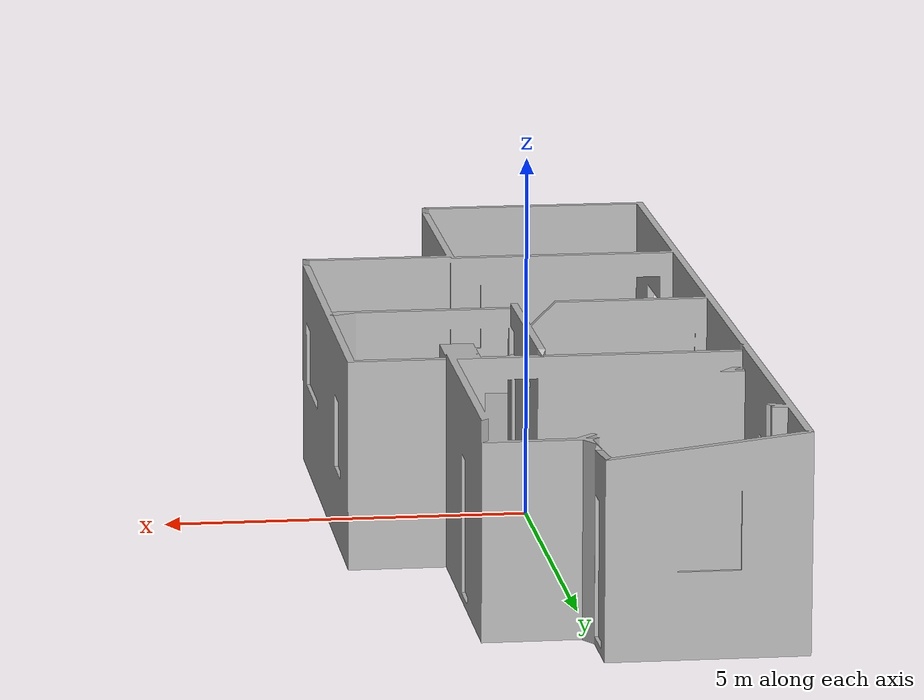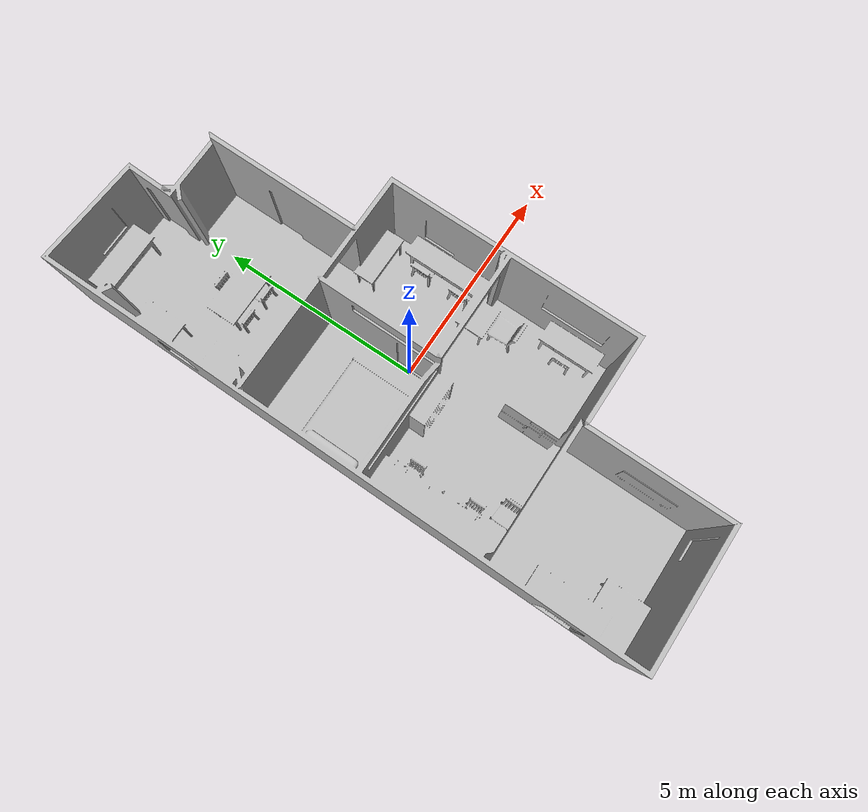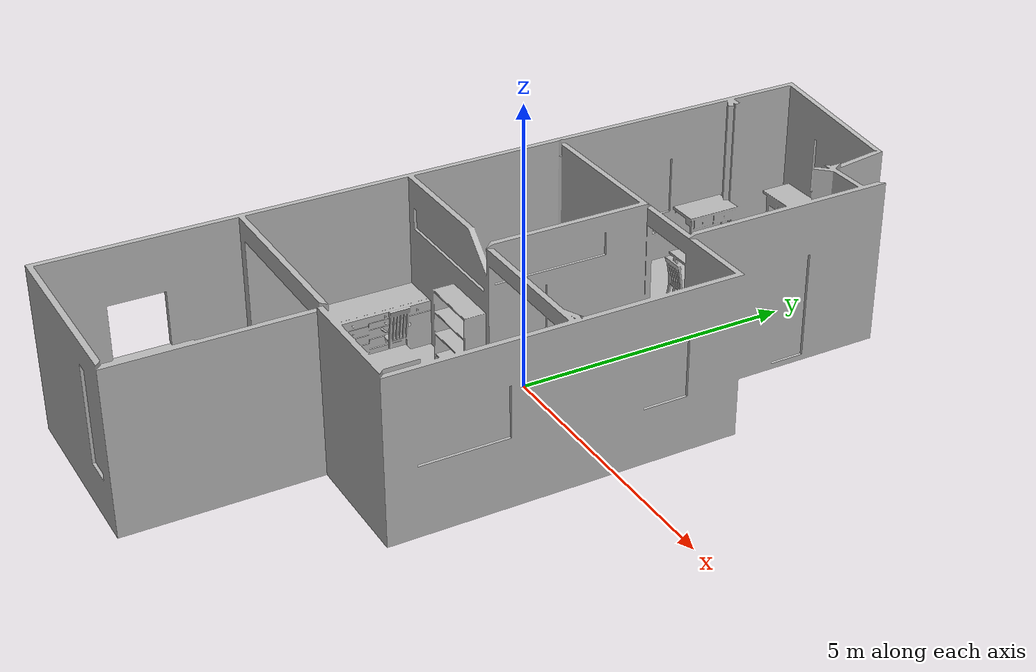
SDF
<?xml version="1.0" ?>
<sdf version="1.7">
  <world name="sensors_world">
    <gravity>0 0 -9.8</gravity>

    <scene>
      <ambient>0.55 0.55 0.55 1.0</ambient>
      <background>0.85 0.85 0.85 1.0</background>
    </scene>

    <physics name="1ms" type="ignored">
      <max_step_size>0.002</max_step_size>
      <real_time_factor>1.0</real_time_factor>
    </physics>

    <plugin filename="ignition-gazebo-physics-system" name="gz::sim::systems::Physics"/>
    <plugin filename="ignition-gazebo-user-commands-system" name="gz::sim::systems::UserCommands"/>
    <plugin filename="ignition-gazebo-scene-broadcaster-system" name="gz::sim::systems::SceneBroadcaster"/>
    <plugin filename="ignition-gazebo-sensors-system" name="gz::sim::systems::Sensors">
      <render_engine>ogre2</render_engine>
    </plugin>
    <plugin filename="ignition-gazebo-imu-system" name="gz::sim::systems::Imu"/>

    <light type="directional" name="sun">
      <cast_shadows>false</cast_shadows>
      <pose>0 0 10 0 0 0</pose>
      <diffuse>0.45 0.45 0.45 1.0</diffuse>
      <specular>0.05 0.05 0.05 1.0</specular>
      <attenuation>
        <range>1000</range>
        <constant>0.9</constant>
        <linear>0.01</linear>
        <quadratic>0.001</quadratic>
      </attenuation>
      <direction>0 0 -1</direction>
    </light>

    <model name="shin_thatedat_office_floor_plan">
      <static>true</static>
      <link name="link">
        <pose>0 0 1.381436 1.5708 0 0</pose>
        <visual name="visual">
          <geometry>
            <mesh>
              <uri>model://reeman_clone_description/meshes/shin_thatedat_office_floor_plan/shin_thatedat_office.obj</uri>
            </mesh>
          </geometry>
        </visual>
        <collision name="collision">
          <geometry>
            <mesh>
              <uri>model://reeman_clone_description/meshes/shin_thatedat_office_floor_plan/shin_thatedat_office.obj</uri>
            </mesh>
          </geometry>
        </collision>
      </link>
    </model>

    <!-- Stable drivable floor for robot physics. Adjust size to match the floor plan. -->
    <model name="drivable_floor">
      <static>true</static>
      <pose>0 0 -0.01 0 0 0</pose>
      <link name="link">
        <collision name="collision">
          <geometry>
            <box>
              <size>20 20 0.02</size>
            </box>
          </geometry>
          <surface>
            <friction>
              <ode>
                <mu>1.2</mu>
                <mu2>1.2</mu2>
              </ode>
            </friction>
          </surface>
        </collision>
      </link>
    </model>

    <!-- Ground plane: safety net if robot exits the floor plan area -->
    <model name="ground_plane">
      <static>true</static>
      <pose>0 0 -2.00 0 0 0</pose>
      <link name="link">
        <collision name="collision">
          <geometry>
            <plane>
              <normal>0 0 1</normal>
              <size>100 100</size>
            </plane>
          </geometry>
        </collision>
      </link>
    </model>

  </world>
</sdf>
